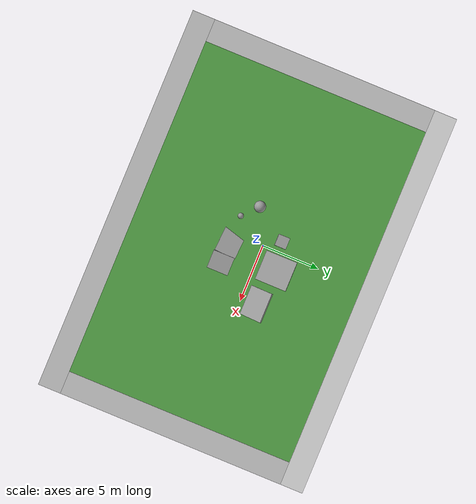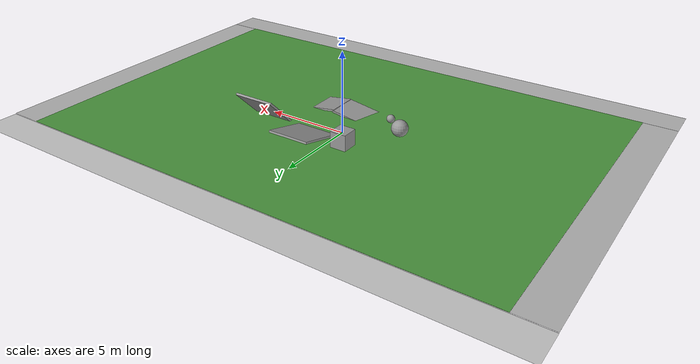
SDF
<sdf version="1.6">
 <world name="default">
  <scene><ambient>0.4 0.4 0.4 1</ambient><background>0.7 0.7 0.7 1</background><shadows>1</shadows></scene>
  <light name="sun" type="directional">
   <pose>0 0 10 0 -0 0</pose>
   <diffuse>0.8 0.8 0.8 1</diffuse>
   <specular>0.2 0.2 0.2 1</specular>
   <attenuation>
    <range>1000</range>
    <constant>0.9</constant>
    <linear>0.01</linear>
    <quadratic>0.001</quadratic>
   </attenuation>
   <direction>-0.5 0.1 -0.9</direction>
  </light>
  <physics name="default_physics" default="0" type="ode">
   <real_time_update_rate>1000</real_time_update_rate>
   <max_step_size>0.001</max_step_size>
   <real_time_factor>1</real_time_factor>
   <ode>
    <solver>
     <type>quick</type>
     <iters>150</iters>
     <precon_iters>0</precon_iters>
     <sor>1.4</sor>
     <use_dynamic_moi_rescaling>1</use_dynamic_moi_rescaling>
    </solver>
    <constraints>
     <cfm>1e-05</cfm>
     <erp>0.2</erp>
     <contact_max_correcting_vel>2000</contact_max_correcting_vel>
     <contact_surface_layer>0.01</contact_surface_layer>
    </constraints>
   </ode>
  </physics>
  <gravity>0 0 -9.8</gravity>
  <magnetic_field>6e-06 2.3e-05 -4.2e-05</magnetic_field>
  <atmosphere type="adiabatic"/>
  <audio><device>default</device></audio>
  <spherical_coordinates>
   <surface_model>EARTH_WGS84</surface_model>
   <latitude_deg>0</latitude_deg>
   <longitude_deg>0</longitude_deg>
   <elevation>0</elevation>
   <heading_deg>0</heading_deg>
  </spherical_coordinates>
  <model name="unit_box">
   <pose>-0.938432 1.35252 0.5 0 -0 0</pose>
   <link name="link">
    <inertial>
     <mass>1</mass>
     <inertia>
      <ixx>0.166667</ixx>
      <ixy>0</ixy>
      <ixz>0</ixz>
      <iyy>0.166667</iyy>
      <iyz>0</iyz>
      <izz>0.166667</izz>
     </inertia>
    </inertial>
    <collision name="collision"><geometry><box><size>1 1 1</size></box></geometry></collision>
    <visual name="visual">
     <geometry><box><size>1 1 1</size></box></geometry>
     <material>
      <script><name>Gazebo/Grey</name><uri>file://media/materials/scripts/gazebo.material</uri></script>
     </material>
    </visual>
   </link>
  </model>
  <model name="ramp_static">
   <link name="link">
    <inertial>
     <mass>1</mass>
     <inertia>
      <ixx>0.166667</ixx>
      <ixy>0</ixy>
      <ixz>0</ixz>
      <iyy>0.166667</iyy>
      <iyz>0</iyz>
      <izz>0.166667</izz>
     </inertia>
    </inertial>
    <visual name="visual">
     <geometry><box><size>2.59037 3.16832 0.131346</size></box></geometry>
     <material>
      <script><name>Gazebo/Grey</name><uri>file://media/materials/scripts/gazebo.material</uri></script>
     </material>
    </visual>
    <collision name="collision">
     <geometry><box><size>2.59037 3.16832 0.131346</size></box></geometry>
     <surface>
      <friction>
       <ode><mu>1</mu><mu2>1</mu2><fdir1>0 0 0</fdir1><slip1>0</slip1><slip2>0</slip2></ode>
       <torsional>
        <coefficient>1</coefficient>
        <patch_radius>0</patch_radius>
        <surface_radius>0</surface_radius>
        <use_patch_radius>1</use_patch_radius>
        <ode><slip>0</slip></ode>
       </torsional>
      </friction>
      <bounce><restitution_coefficient>0</restitution_coefficient><threshold>1e+06</threshold></bounce>
      <contact>
       <collide_without_contact>0</collide_without_contact>
       <collide_without_contact_bitmask>1</collide_without_contact_bitmask>
       <collide_bitmask>1</collide_bitmask>
       <ode>
        <soft_cfm>0</soft_cfm>
        <soft_erp>0.2</soft_erp>
        <kp>1e+13</kp>
        <kd>1</kd>
        <max_vel>0.01</max_vel>
        <min_depth>0</min_depth>
       </ode>
       <bullet>
        <split_impulse>1</split_impulse>
        <split_impulse_penetration_threshold>-0.01</split_impulse_penetration_threshold>
        <soft_cfm>0</soft_cfm>
        <soft_erp>0.2</soft_erp>
        <kp>1e+13</kp>
        <kd>1</kd>
       </bullet>
      </contact>
     </surface>
    </collision>
   </link>
   <static>1</static>
   <pose>1.50462 1.65185 0.262242 0.249773 -0 0</pose>
  </model>
  <model name="ramp_static_0">
   <link name="link">
    <inertial>
     <mass>1</mass>
     <inertia>
      <ixx>0.166667</ixx>
      <ixy>0</ixy>
      <ixz>0</ixz>
      <iyy>0.166667</iyy>
      <iyz>0</iyz>
      <izz>0.166667</izz>
     </inertia>
    </inertial>
    <visual name="visual">
     <geometry><box><size>2.59037 3.16832 0.131346</size></box></geometry>
     <material>
      <script><name>Gazebo/Grey</name><uri>file://media/materials/scripts/gazebo.material</uri></script>
     </material>
    </visual>
    <collision name="collision">
     <geometry><box><size>2.59037 3.16832 0.131346</size></box></geometry>
     <surface>
      <friction>
       <ode><mu>1</mu><mu2>1</mu2><fdir1>0 0 0</fdir1><slip1>0</slip1><slip2>0</slip2></ode>
       <torsional>
        <coefficient>1</coefficient>
        <patch_radius>0</patch_radius>
        <surface_radius>0</surface_radius>
        <use_patch_radius>1</use_patch_radius>
        <ode><slip>0</slip></ode>
       </torsional>
      </friction>
      <bounce><restitution_coefficient>0</restitution_coefficient><threshold>1e+06</threshold></bounce>
      <contact>
       <collide_without_contact>0</collide_without_contact>
       <collide_without_contact_bitmask>1</collide_without_contact_bitmask>
       <collide_bitmask>1</collide_bitmask>
       <ode>
        <soft_cfm>0</soft_cfm>
        <soft_erp>0.2</soft_erp>
        <kp>1e+13</kp>
        <kd>1</kd>
        <max_vel>0.01</max_vel>
        <min_depth>0</min_depth>
       </ode>
       <bullet>
        <split_impulse>1</split_impulse>
        <split_impulse_penetration_threshold>-0.01</split_impulse_penetration_threshold>
        <soft_cfm>0</soft_cfm>
        <soft_erp>0.2</soft_erp>
        <kp>1e+13</kp>
        <kd>1</kd>
       </bullet>
      </contact>
     </surface>
    </collision>
   </link>
   <static>1</static>
   <pose>4.69719 1.11392 0.672027 0.789711 -0 0</pose>
  </model>
  <model name="unit_sphere">
   <pose>-2.94168 -1.48418 0.5 0 -0 0</pose>
   <link name="link">
    <inertial>
     <mass>1</mass>
     <inertia><ixx>0.1</ixx><ixy>0</ixy><ixz>0</ixz><iyy>0.1</iyy><iyz>0</iyz><izz>0.1</izz></inertia>
    </inertial>
    <collision name="collision"><geometry><sphere><radius>0.5</radius></sphere></geometry></collision>
    <visual name="visual">
     <geometry><sphere><radius>0.5</radius></sphere></geometry>
     <material>
      <script><name>Gazebo/Grey</name><uri>file://media/materials/scripts/gazebo.material</uri></script>
     </material>
    </visual>
   </link>
  </model>
  <model name="unit_sphere_0">
   <pose>-1.62882 -2.684 0.252946 0 -0 0</pose>
   <link name="link">
    <inertial>
     <mass>1</mass>
     <inertia><ixx>0.1</ixx><ixy>0</ixy><ixz>0</ixz><iyy>0.1</iyy><iyz>0</iyz><izz>0.1</izz></inertia>
    </inertial>
    <collision name="collision"><geometry><sphere><radius>0.252946</radius></sphere></geometry></collision>
    <visual name="visual">
     <geometry><sphere><radius>0.252946</radius></sphere></geometry>
     <material>
      <script><name>Gazebo/Grey</name><uri>file://media/materials/scripts/gazebo.material</uri></script>
     </material>
    </visual>
   </link>
  </model>
  <model name="ramp_static_1">
   <link name="link">
    <inertial>
     <mass>1</mass>
     <inertia>
      <ixx>0.166667</ixx>
      <ixy>0</ixy>
      <ixz>0</ixz>
      <iyy>0.166667</iyy>
      <iyz>0</iyz>
      <izz>0.166667</izz>
     </inertia>
    </inertial>
    <visual name="visual">
     <geometry><box><size>2.59037 1.87329 0.131346</size></box></geometry>
     <material>
      <script><name>Gazebo/Grey</name><uri>file://media/materials/scripts/gazebo.material</uri></script>
     </material>
    </visual>
    <collision name="collision">
     <geometry><box><size>2.59037 1.87329 0.131346</size></box></geometry>
     <surface>
      <friction>
       <ode><mu>1</mu><mu2>1</mu2><fdir1>0 0 0</fdir1><slip1>0</slip1><slip2>0</slip2></ode>
       <torsional>
        <coefficient>1</coefficient>
        <patch_radius>0</patch_radius>
        <surface_radius>0</surface_radius>
        <use_patch_radius>1</use_patch_radius>
        <ode><slip>0</slip></ode>
       </torsional>
      </friction>
      <bounce><restitution_coefficient>0</restitution_coefficient><threshold>1e+06</threshold></bounce>
      <contact>
       <collide_without_contact>0</collide_without_contact>
       <collide_without_contact_bitmask>1</collide_without_contact_bitmask>
       <collide_bitmask>1</collide_bitmask>
       <ode>
        <soft_cfm>0</soft_cfm>
        <soft_erp>0.2</soft_erp>
        <kp>1e+13</kp>
        <kd>1</kd>
        <max_vel>0.01</max_vel>
        <min_depth>0</min_depth>
       </ode>
       <bullet>
        <split_impulse>1</split_impulse>
        <split_impulse_penetration_threshold>-0.01</split_impulse_penetration_threshold>
        <soft_cfm>0</soft_cfm>
        <soft_erp>0.2</soft_erp>
        <kp>1e+13</kp>
        <kd>1</kd>
       </bullet>
      </contact>
     </surface>
    </collision>
   </link>
   <static>1</static>
   <pose>3.13669 -2.74405 0 0 0.151877 0</pose>
  </model>
  <model name="ramp_static_1_clone">
   <link name="link">
    <inertial>
     <mass>1</mass>
     <inertia>
      <ixx>0.166667</ixx>
      <ixy>0</ixy>
      <ixz>0</ixz>
      <iyy>0.166667</iyy>
      <iyz>0</iyz>
      <izz>0.166667</izz>
     </inertia>
    </inertial>
    <visual name="visual">
     <geometry><box><size>2.59037 1.87329 0.131346</size></box></geometry>
     <material>
      <script><name>Gazebo/Grey</name><uri>file://media/materials/scripts/gazebo.material</uri></script>
     </material>
    </visual>
    <collision name="collision">
     <geometry><box><size>2.59037 1.87329 0.131346</size></box></geometry>
     <surface>
      <friction>
       <ode><mu>1</mu><mu2>1</mu2><fdir1>0 0 0</fdir1><slip1>0</slip1><slip2>0</slip2></ode>
       <torsional>
        <coefficient>1</coefficient>
        <patch_radius>0</patch_radius>
        <surface_radius>0</surface_radius>
        <use_patch_radius>1</use_patch_radius>
        <ode><slip>0</slip></ode>
       </torsional>
      </friction>
      <bounce><restitution_coefficient>0</restitution_coefficient><threshold>1e+06</threshold></bounce>
      <contact>
       <collide_without_contact>0</collide_without_contact>
       <collide_without_contact_bitmask>1</collide_without_contact_bitmask>
       <collide_bitmask>1</collide_bitmask>
       <ode>
        <soft_cfm>0</soft_cfm>
        <soft_erp>0.2</soft_erp>
        <kp>1e+13</kp>
        <kd>1</kd>
        <max_vel>0.01</max_vel>
        <min_depth>0</min_depth>
       </ode>
       <bullet>
        <split_impulse>1</split_impulse>
        <split_impulse_penetration_threshold>-0.01</split_impulse_penetration_threshold>
        <soft_cfm>0</soft_cfm>
        <soft_erp>0.2</soft_erp>
        <kp>1e+13</kp>
        <kd>1</kd>
       </bullet>
      </contact>
     </surface>
    </collision>
   </link>
   <static>1</static>
   <pose>0.591812 -2.61725 0.026187 -0.023842 -0.111178 -0.05884</pose>
  </model>
  <model name="robocup_3d_field">
   <static>1</static>
   <link name="field">
    <pose>0 0 0.01 0 -0 0</pose>
    <collision name="collision">
     <geometry><plane><normal>0 0 1</normal><size>30 20</size></plane></geometry>
     <surface><friction><ode><mu>100</mu><mu2>50</mu2></ode></friction></surface>
    </collision>
    <visual name="base1">
     <pose>0 11 0.001 0 -0 0</pose>
     <cast_shadows>0</cast_shadows>
     <geometry><plane><normal>0 0 1</normal><size>34 2</size></plane></geometry>
     <material>
      <script>
       <uri>model://robocup_3Dsim_field/materials/scripts/</uri>
       <uri>model://robocup_3Dsim_field/materials/textures/</uri>
       <name>RoboCup/FieldBorder</name>
      </script>
     </material>
    </visual>
    <visual name="base2">
     <pose>0 -11 0.001 0 -0 0</pose>
     <cast_shadows>0</cast_shadows>
     <geometry><plane><normal>0 0 1</normal><size>34 2</size></plane></geometry>
     <material>
      <script>
       <uri>model://robocup_3Dsim_field/materials/scripts/</uri>
       <uri>model://robocup_3Dsim_field/materials/textures/</uri>
       <name>RoboCup/FieldBorder</name>
      </script>
     </material>
    </visual>
    <visual name="base3">
     <pose>16 0 0.001 0 -0 0</pose>
     <cast_shadows>0</cast_shadows>
     <geometry><plane><normal>0 0 1</normal><size>2 20</size></plane></geometry>
     <material>
      <script>
       <uri>model://robocup_3Dsim_field/materials/scripts/</uri>
       <uri>model://robocup_3Dsim_field/materials/textures/</uri>
       <name>RoboCup/FieldBorder</name>
      </script>
     </material>
    </visual>
    <visual name="base4">
     <pose>-16 0 0.001 0 -0 0</pose>
     <cast_shadows>0</cast_shadows>
     <geometry><plane><normal>0 0 1</normal><size>2 20</size></plane></geometry>
     <material>
      <script>
       <uri>model://robocup_3Dsim_field/materials/scripts/</uri>
       <uri>model://robocup_3Dsim_field/materials/textures/</uri>
       <name>RoboCup/FieldBorder</name>
      </script>
     </material>
    </visual>
    <visual name="carpet">
     <cast_shadows>0</cast_shadows>
     <geometry><plane><normal>0 0 1</normal><size>30 20</size></plane></geometry>
     <material>
      <script>
       <uri>model://robocup_3Dsim_field/materials/scripts/</uri>
       <uri>model://robocup_3Dsim_field/materials/textures/</uri>
       <name>RoboCup/Grass</name>
      </script>
     </material>
    </visual>
   </link>
   <pose>0.943403 -1.00208 0 0 -0 0</pose>
  </model>
 </world>
</sdf>
